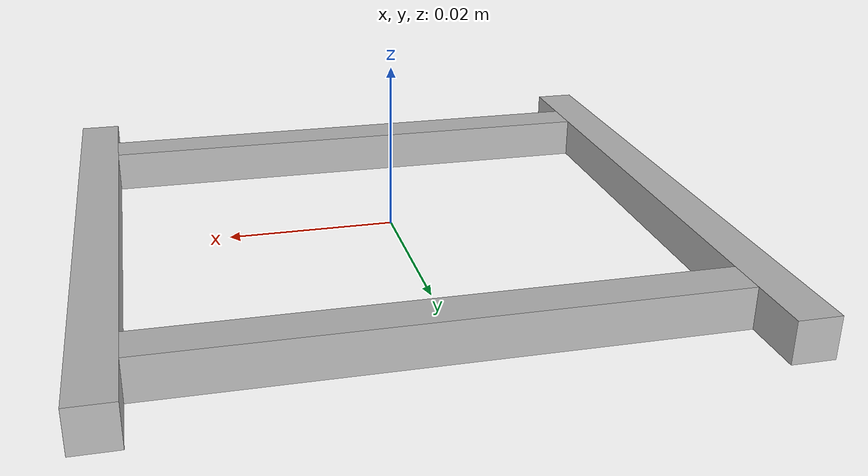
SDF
<?xml version='1.0'?>
<sdf version='1.6'>
    <model name="Drivetrain">
        <link name="left_rode">
            <pose>0 .02794 0 0 0 0</pose>
            <collision name="left_rode_collision">
                <geometry>
                    <box>
                        <size>.06604 .00508 .00508 0 0 0</size>
                    </box>
                </geometry>
            </collision>
            <visual name="left_rode_visual">
                <geometry>
                    <box>
                        <size>.06604 .00508 .00508 0 0 0</size>
                    </box>
                </geometry>
            </visual>
        </link>
        <link name="right_rode">
            <pose>0 -.02794 0 0 0 0</pose>
            <collision name="right_rode_collision">
                <geometry>
                    <box>
                        <size>.06604 .00508 .00508 0 0 0</size>
                    </box>
                </geometry>
            </collision>
            <visual name="right_rode_visual">
                <geometry>
                    <box>
                        <size>.06604 .00508 .00508 0 0 0</size>
                    </box>
                </geometry>
            </visual>
        </link>
        <link name="top_rode">
            <pose>.03556 0 0 0 0 0</pose>
            <collision name="top_rode_collision">
                <geometry>
                    <box>
                        <size>.00508 .0762 .00508 0 0 0</size>
                    </box>
                </geometry>
            </collision>
            <visual name="top_rode_visual">
                <geometry>
                    <box>
                        <size>.00508 .0762 .00508 0 0 0</size>
                    </box>
                </geometry>
            </visual>
        </link>
        <link name="bottom_rode">
            <pose>-.03556 0 0 0 0 0</pose>
            <collision name="bottom_rode_collision">
                <geometry>
                    <box>
                        <size>.00508 .0762 .00508 0 0 0</size>
                    </box>
                </geometry>
            </collision>
            <visual name="bottom_rode_visual">
                <geometry>
                    <box>
                        <size>.00508 .0762 .00508 0 0 0</size>
                    </box>
                </geometry>
            </visual>
        </link>
        <joint type="fixed" name="left_top_rode_joint">
            <pose>.03302 .02794 00254 0 0 0</pose>
            <child>left_rode</child>
            <parent>top_rode</parent>
        </joint>
        <joint type="fixed" name="right_top_rode_joint">
            <pose>.03302 -.02794 00254 0 0 0</pose>
            <child>right_rode</child>
            <parent>top_rode</parent>
        </joint>
        <joint type="fixed" name="left_bottom_rode_joint">
            <pose>-.03302 .02794 00254 0 0 0</pose>
            <child>left_rode</child>
            <parent>bottom_rode</parent>
        </joint>
        <joint type="fixed" name="left_top_rode_joint">
            <pose>-.03302 -.02794 00254 0 0 0</pose>
            <child>right_rode</child>
            <parent>bottom_rode</parent>
        </joint>
    </model>
</sdf>
